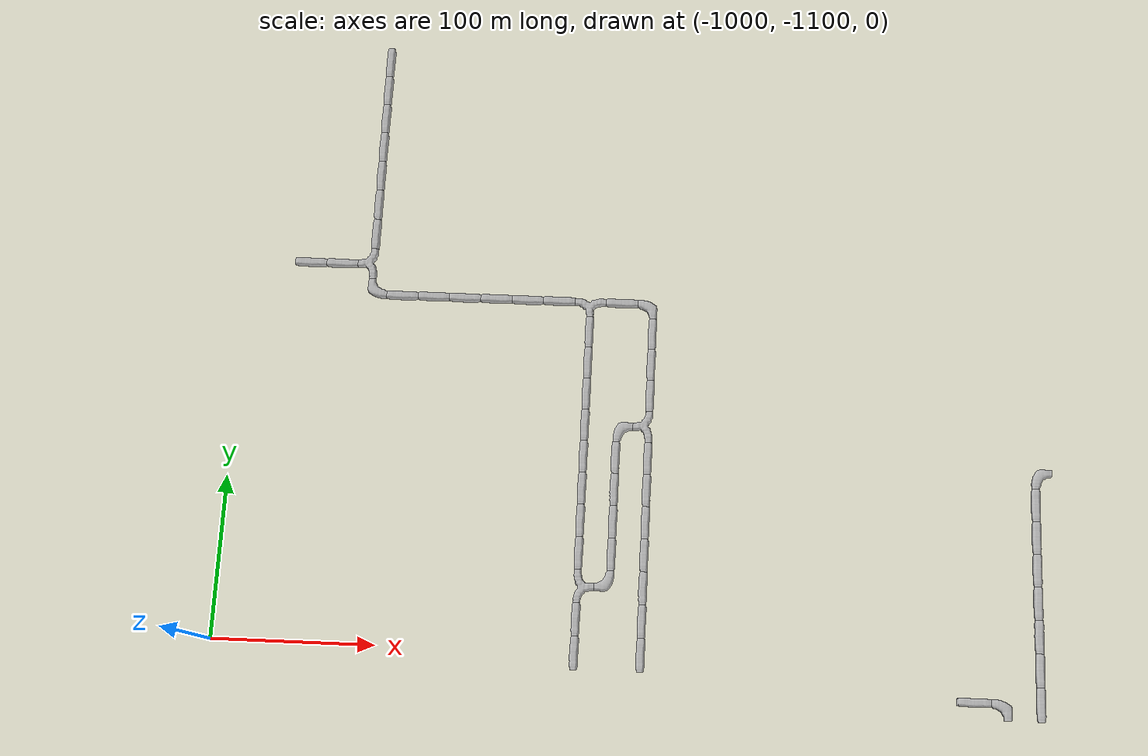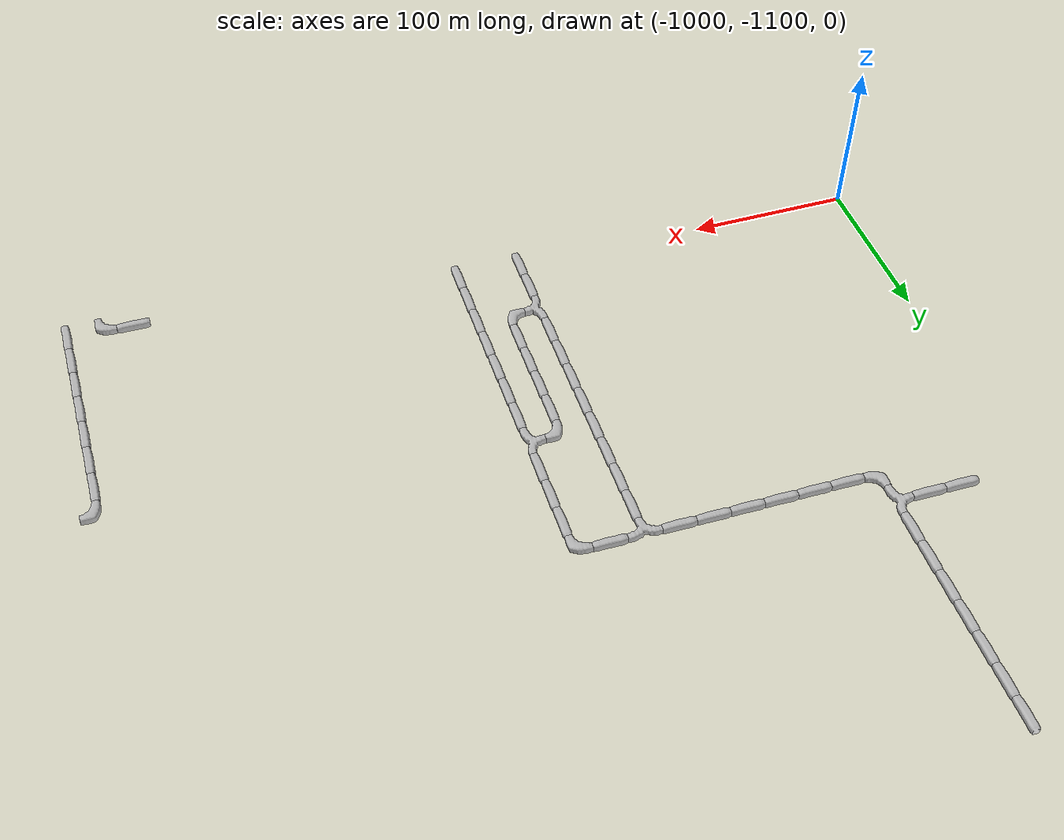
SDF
<sdf version="1.6">
 <world name="cave_32000_0">
  <include>
   <static>true</static>
   <name>cave_-25_-49</name>
   <pose>-500 -980 0 0 0 -1.5707963267948966</pose>
   <uri>model://cave_L_20m</uri>
  </include>
  <include>
   <static>true</static>
   <name>cave_-25_-50</name>
   <pose>-500 -1000 0 0 0 0.0</pose>
   <uri>model://cave_straight_20m</uri>
  </include>
  <include>
   <static>true</static>
   <name>cave_-25_-51</name>
   <pose>-500 -1020 0 0 0 0.0</pose>
   <uri>model://cave_straight_20m</uri>
  </include>
  <include>
   <static>true</static>
   <name>cave_-25_-52</name>
   <pose>-500 -1040 0 0 0 0.0</pose>
   <uri>model://cave_straight_20m</uri>
  </include>
  <include>
   <static>true</static>
   <name>cave_-25_-53</name>
   <pose>-500 -1060 0 0 0 0.0</pose>
   <uri>model://cave_straight_20m</uri>
  </include>
  <include>
   <static>true</static>
   <name>cave_-25_-54</name>
   <pose>-500 -1080 0 0 0 0.0</pose>
   <uri>model://cave_straight_20m</uri>
  </include>
  <include>
   <static>true</static>
   <name>cave_-25_-55</name>
   <pose>-500 -1100 0 0 0 0.0</pose>
   <uri>model://cave_straight_20m</uri>
  </include>
  <include>
   <static>true</static>
   <name>cave_-25_-56</name>
   <pose>-500 -1120 0 0 0 0.0</pose>
   <uri>model://cave_straight_20m</uri>
  </include>
  <include>
   <static>true</static>
   <name>cave_-26_-56</name>
   <pose>-520 -1120 0 0 0 3.141592653589793</pose>
   <uri>model://cave_L_20m</uri>
  </include>
  <include>
   <static>true</static>
   <name>cave_-27_-56</name>
   <pose>-540 -1120 0 0 0 1.5707963267948966</pose>
   <uri>model://cave_straight_20m</uri>
  </include>
  <include>
   <static>true</static>
   <name>cave_-39_-55</name>
   <pose>-780 -1100 0 0 0 0.0</pose>
   <uri>model://cave_straight_20m</uri>
  </include>
  <include>
   <static>true</static>
   <name>cave_-39_-54</name>
   <pose>-780 -1080 0 0 0 0.0</pose>
   <uri>model://cave_straight_20m</uri>
  </include>
  <include>
   <static>true</static>
   <name>cave_-39_-53</name>
   <pose>-780 -1060 0 0 0 -1.5707963267948966</pose>
   <uri>model://cave_3way_20m</uri>
  </include>
  <include>
   <static>true</static>
   <name>cave_-38_-53</name>
   <pose>-760 -1060 0 0 0 1.5707963267948966</pose>
   <uri>model://cave_L_20m</uri>
  </include>
  <include>
   <static>true</static>
   <name>cave_-38_-52</name>
   <pose>-760 -1040 0 0 0 0.0</pose>
   <uri>model://cave_straight_20m</uri>
  </include>
  <include>
   <static>true</static>
   <name>cave_-38_-51</name>
   <pose>-760 -1020 0 0 0 0.0</pose>
   <uri>model://cave_straight_20m</uri>
  </include>
  <include>
   <static>true</static>
   <name>cave_-38_-50</name>
   <pose>-760 -1000 0 0 0 0.0</pose>
   <uri>model://cave_straight_20m</uri>
  </include>
  <include>
   <static>true</static>
   <name>cave_-38_-49</name>
   <pose>-760 -980 0 0 0 0.0</pose>
   <uri>model://cave_straight_20m</uri>
  </include>
  <include>
   <static>true</static>
   <name>cave_-38_-48</name>
   <pose>-760 -960 0 0 0 -1.5707963267948966</pose>
   <uri>model://cave_L_20m</uri>
  </include>
  <include>
   <static>true</static>
   <name>cave_-37_-48</name>
   <pose>-740 -960 0 0 0 1.5707963267948966</pose>
   <uri>model://cave_3way_20m</uri>
  </include>
  <include>
   <static>true</static>
   <name>cave_-37_-49</name>
   <pose>-740 -980 0 0 0 0.0</pose>
   <uri>model://cave_straight_20m</uri>
  </include>
  <include>
   <static>true</static>
   <name>cave_-37_-50</name>
   <pose>-740 -1000 0 0 0 0.0</pose>
   <uri>model://cave_straight_20m</uri>
  </include>
  <include>
   <static>true</static>
   <name>cave_-37_-51</name>
   <pose>-740 -1020 0 0 0 0.0</pose>
   <uri>model://cave_straight_20m</uri>
  </include>
  <include>
   <static>true</static>
   <name>cave_-37_-52</name>
   <pose>-740 -1040 0 0 0 0.0</pose>
   <uri>model://cave_straight_20m</uri>
  </include>
  <include>
   <static>true</static>
   <name>cave_-37_-53</name>
   <pose>-740 -1060 0 0 0 0.0</pose>
   <uri>model://cave_straight_20m</uri>
  </include>
  <include>
   <static>true</static>
   <name>cave_-37_-54</name>
   <pose>-740 -1080 0 0 0 0.0</pose>
   <uri>model://cave_straight_20m</uri>
  </include>
  <include>
   <static>true</static>
   <name>cave_-37_-55</name>
   <pose>-740 -1100 0 0 0 0.0</pose>
   <uri>model://cave_straight_20m</uri>
  </include>
  <include>
   <static>true</static>
   <name>cave_-37_-47</name>
   <pose>-740 -940 0 0 0 0.0</pose>
   <uri>model://cave_straight_20m</uri>
  </include>
  <include>
   <static>true</static>
   <name>cave_-37_-46</name>
   <pose>-740 -920 0 0 0 0.0</pose>
   <uri>model://cave_straight_20m</uri>
  </include>
  <include>
   <static>true</static>
   <name>cave_-37_-45</name>
   <pose>-740 -900 0 0 0 0.0</pose>
   <uri>model://cave_straight_20m</uri>
  </include>
  <include>
   <static>true</static>
   <name>cave_-37_-44</name>
   <pose>-740 -880 0 0 0 3.141592653589793</pose>
   <uri>model://cave_L_20m</uri>
  </include>
  <include>
   <static>true</static>
   <name>cave_-39_-52</name>
   <pose>-780 -1040 0 0 0 0.0</pose>
   <uri>model://cave_straight_20m</uri>
  </include>
  <include>
   <static>true</static>
   <name>cave_-39_-51</name>
   <pose>-780 -1020 0 0 0 0.0</pose>
   <uri>model://cave_straight_20m</uri>
  </include>
  <include>
   <static>true</static>
   <name>cave_-39_-50</name>
   <pose>-780 -1000 0 0 0 0.0</pose>
   <uri>model://cave_straight_20m</uri>
  </include>
  <include>
   <static>true</static>
   <name>cave_-39_-49</name>
   <pose>-780 -980 0 0 0 0.0</pose>
   <uri>model://cave_straight_20m</uri>
  </include>
  <include>
   <static>true</static>
   <name>cave_-39_-48</name>
   <pose>-780 -960 0 0 0 0.0</pose>
   <uri>model://cave_straight_20m</uri>
  </include>
  <include>
   <static>true</static>
   <name>cave_-39_-47</name>
   <pose>-780 -940 0 0 0 0.0</pose>
   <uri>model://cave_straight_20m</uri>
  </include>
  <include>
   <static>true</static>
   <name>cave_-39_-46</name>
   <pose>-780 -920 0 0 0 0.0</pose>
   <uri>model://cave_straight_20m</uri>
  </include>
  <include>
   <static>true</static>
   <name>cave_-39_-45</name>
   <pose>-780 -900 0 0 0 0.0</pose>
   <uri>model://cave_straight_20m</uri>
  </include>
  <include>
   <static>true</static>
   <name>cave_-39_-44</name>
   <pose>-780 -880 0 0 0 3.141592653589793</pose>
   <uri>model://cave_3way_20m</uri>
  </include>
  <include>
   <static>true</static>
   <name>cave_-38_-44</name>
   <pose>-760 -880 0 0 0 1.5707963267948966</pose>
   <uri>model://cave_straight_20m</uri>
  </include>
  <include>
   <static>true</static>
   <name>cave_-40_-44</name>
   <pose>-800 -880 0 0 0 1.5707963267948966</pose>
   <uri>model://cave_straight_20m</uri>
  </include>
  <include>
   <static>true</static>
   <name>cave_-41_-44</name>
   <pose>-820 -880 0 0 0 1.5707963267948966</pose>
   <uri>model://cave_straight_20m</uri>
  </include>
  <include>
   <static>true</static>
   <name>cave_-42_-44</name>
   <pose>-840 -880 0 0 0 1.5707963267948966</pose>
   <uri>model://cave_straight_20m</uri>
  </include>
  <include>
   <static>true</static>
   <name>cave_-43_-44</name>
   <pose>-860 -880 0 0 0 1.5707963267948966</pose>
   <uri>model://cave_straight_20m</uri>
  </include>
  <include>
   <static>true</static>
   <name>cave_-44_-44</name>
   <pose>-880 -880 0 0 0 1.5707963267948966</pose>
   <uri>model://cave_straight_20m</uri>
  </include>
  <include>
   <static>true</static>
   <name>cave_-45_-44</name>
   <pose>-900 -880 0 0 0 1.5707963267948966</pose>
   <uri>model://cave_straight_20m</uri>
  </include>
  <include>
   <static>true</static>
   <name>cave_-46_-44</name>
   <pose>-920 -880 0 0 0 0.0</pose>
   <uri>model://cave_L_20m</uri>
  </include>
  <include>
   <static>true</static>
   <name>cave_-46_-43</name>
   <pose>-920 -860 0 0 0 1.5707963267948966</pose>
   <uri>model://cave_3way_20m</uri>
  </include>
  <include>
   <static>true</static>
   <name>cave_-47_-43</name>
   <pose>-940 -860 0 0 0 1.5707963267948966</pose>
   <uri>model://cave_straight_20m</uri>
  </include>
  <include>
   <static>true</static>
   <name>cave_-48_-43</name>
   <pose>-960 -860 0 0 0 1.5707963267948966</pose>
   <uri>model://cave_straight_20m</uri>
  </include>
  <include>
   <static>true</static>
   <name>cave_-46_-42</name>
   <pose>-920 -840 0 0 0 0.0</pose>
   <uri>model://cave_straight_20m</uri>
  </include>
  <include>
   <static>true</static>
   <name>cave_-46_-41</name>
   <pose>-920 -820 0 0 0 0.0</pose>
   <uri>model://cave_straight_20m</uri>
  </include>
  <include>
   <static>true</static>
   <name>cave_-46_-40</name>
   <pose>-920 -800 0 0 0 0.0</pose>
   <uri>model://cave_straight_20m</uri>
  </include>
  <include>
   <static>true</static>
   <name>cave_-46_-39</name>
   <pose>-920 -780 0 0 0 0.0</pose>
   <uri>model://cave_straight_20m</uri>
  </include>
  <include>
   <static>true</static>
   <name>cave_-46_-38</name>
   <pose>-920 -760 0 0 0 0.0</pose>
   <uri>model://cave_straight_20m</uri>
  </include>
  <include>
   <static>true</static>
   <name>cave_-46_-37</name>
   <pose>-920 -740 0 0 0 0.0</pose>
   <uri>model://cave_straight_20m</uri>
  </include>
  <include>
   <static>true</static>
   <name>cave_-46_-36</name>
   <pose>-920 -720 0 0 0 0.0</pose>
   <uri>model://cave_straight_20m</uri>
  </include>
 </world>
</sdf>
